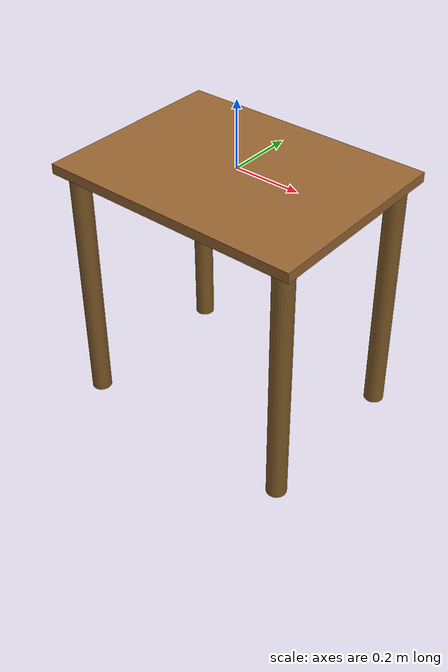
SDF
<?xml version="1.0"?>
<sdf version="1.6">
  <model name="work_table">
    <static>true</static>

    <!-- ==================== TABLE TOP ==================== -->
    <link name="table_top">
      <pose>0 0 -0.015 0 0 0</pose>  <!-- Offset down by half thickness -->

      <inertial>
        <mass>10.0</mass>
        <inertia>
          <ixx>0.31</ixx><ixy>0</ixy><ixz>0</ixz>
          <iyy>0.54</iyy><iyz>0</iyz>
          <izz>0.83</izz>
        </inertia>
      </inertial>

      <collision name="top_collision">
        <geometry>
          <box>
            <!-- TABLE TOP DIMENSIONS: X(width) Y(depth) Z(thickness) -->
            <size>0.80 0.60 0.03</size>
          </box>
        </geometry>
        <surface>
          <friction>
            <ode>
              <mu>0.8</mu>
              <mu2>0.8</mu2>
            </ode>
          </friction>
        </surface>
      </collision>

      <visual name="top_visual">
        <geometry>
          <box>
            <size>0.80 0.60 0.03</size>
          </box>
        </geometry>
        <material>
          <!-- Wood-like brown color -->
          <ambient>0.6 0.4 0.2 1</ambient>
          <diffuse>0.6 0.4 0.2 1</diffuse>
          <specular>0.2 0.2 0.2 1</specular>
        </material>
      </visual>
    </link>

    <!-- ==================== TABLE LEGS ==================== -->

    <!-- LEG 1: Front-Left (-X, +Y) -->
    <link name="leg_1">
      <!-- Pose: x, y, z(center of leg), roll, pitch, yaw -->
      <!-- Z = -(table_top_thickness + leg_height/2) = -(0.03 + 0.77/2) = -0.415 -->
      <pose>-0.35 0.25 -0.415 0 0 0</pose>

      <inertial>
        <mass>1.0</mass>
        <inertia>
          <ixx>0.05</ixx><ixy>0</ixy><ixz>0</ixz>
          <iyy>0.05</iyy><iyz>0</iyz>
          <izz>0.0005</izz>
        </inertia>
      </inertial>

      <collision name="leg_1_collision">
        <geometry>
          <cylinder>
            <!-- LEG DIMENSIONS -->
            <radius>0.03</radius>
            <length>0.77</length>  <!-- Height = total_height - top_thickness -->
          </cylinder>
        </geometry>
      </collision>

      <visual name="leg_1_visual">
        <geometry>
          <cylinder>
            <radius>0.03</radius>
            <length>0.77</length>
          </cylinder>
        </geometry>
        <material>
          <ambient>0.5 0.35 0.15 1</ambient>
          <diffuse>0.5 0.35 0.15 1</diffuse>
          <specular>0.1 0.1 0.1 1</specular>
        </material>
      </visual>
    </link>

    <!-- LEG 2: Front-Right (+X, +Y) -->
    <link name="leg_2">
      <pose>0.35 0.25 -0.415 0 0 0</pose>

      <inertial>
        <mass>1.0</mass>
        <inertia>
          <ixx>0.05</ixx><ixy>0</ixy><ixz>0</ixz>
          <iyy>0.05</iyy><iyz>0</iyz>
          <izz>0.0005</izz>
        </inertia>
      </inertial>

      <collision name="leg_2_collision">
        <geometry>
          <cylinder>
            <radius>0.03</radius>
            <length>0.77</length>
          </cylinder>
        </geometry>
      </collision>

      <visual name="leg_2_visual">
        <geometry>
          <cylinder>
            <radius>0.03</radius>
            <length>0.77</length>
          </cylinder>
        </geometry>
        <material>
          <ambient>0.5 0.35 0.15 1</ambient>
          <diffuse>0.5 0.35 0.15 1</diffuse>
          <specular>0.1 0.1 0.1 1</specular>
        </material>
      </visual>
    </link>

    <!-- LEG 3: Back-Left (-X, -Y) -->
    <link name="leg_3">
      <pose>-0.35 -0.25 -0.415 0 0 0</pose>

      <inertial>
        <mass>1.0</mass>
        <inertia>
          <ixx>0.05</ixx><ixy>0</ixy><ixz>0</ixz>
          <iyy>0.05</iyy><iyz>0</iyz>
          <izz>0.0005</izz>
        </inertia>
      </inertial>

      <collision name="leg_3_collision">
        <geometry>
          <cylinder>
            <radius>0.03</radius>
            <length>0.77</length>
          </cylinder>
        </geometry>
      </collision>

      <visual name="leg_3_visual">
        <geometry>
          <cylinder>
            <radius>0.03</radius>
            <length>0.77</length>
          </cylinder>
        </geometry>
        <material>
          <ambient>0.5 0.35 0.15 1</ambient>
          <diffuse>0.5 0.35 0.15 1</diffuse>
          <specular>0.1 0.1 0.1 1</specular>
        </material>
      </visual>
    </link>

    <!-- LEG 4: Back-Right (+X, -Y) -->
    <link name="leg_4">
      <pose>0.35 -0.25 -0.415 0 0 0</pose>

      <inertial>
        <mass>1.0</mass>
        <inertia>
          <ixx>0.05</ixx><ixy>0</ixy><ixz>0</ixz>
          <iyy>0.05</iyy><iyz>0</iyz>
          <izz>0.0005</izz>
        </inertia>
      </inertial>

      <collision name="leg_4_collision">
        <geometry>
          <cylinder>
            <radius>0.03</radius>
            <length>0.77</length>
          </cylinder>
        </geometry>
      </collision>

      <visual name="leg_4_visual">
        <geometry>
          <cylinder>
            <radius>0.03</radius>
            <length>0.77</length>
          </cylinder>
        </geometry>
        <material>
          <ambient>0.5 0.35 0.15 1</ambient>
          <diffuse>0.5 0.35 0.15 1</diffuse>
          <specular>0.1 0.1 0.1 1</specular>
        </material>
      </visual>
    </link>

    <!-- Fixed joints to connect legs to table top -->
    <joint name="leg_1_joint" type="fixed">
      <parent>table_top</parent>
      <child>leg_1</child>
    </joint>
    <joint name="leg_2_joint" type="fixed">
      <parent>table_top</parent>
      <child>leg_2</child>
    </joint>
    <joint name="leg_3_joint" type="fixed">
      <parent>table_top</parent>
      <child>leg_3</child>
    </joint>
    <joint name="leg_4_joint" type="fixed">
      <parent>table_top</parent>
      <child>leg_4</child>
    </joint>

  </model>
</sdf>
